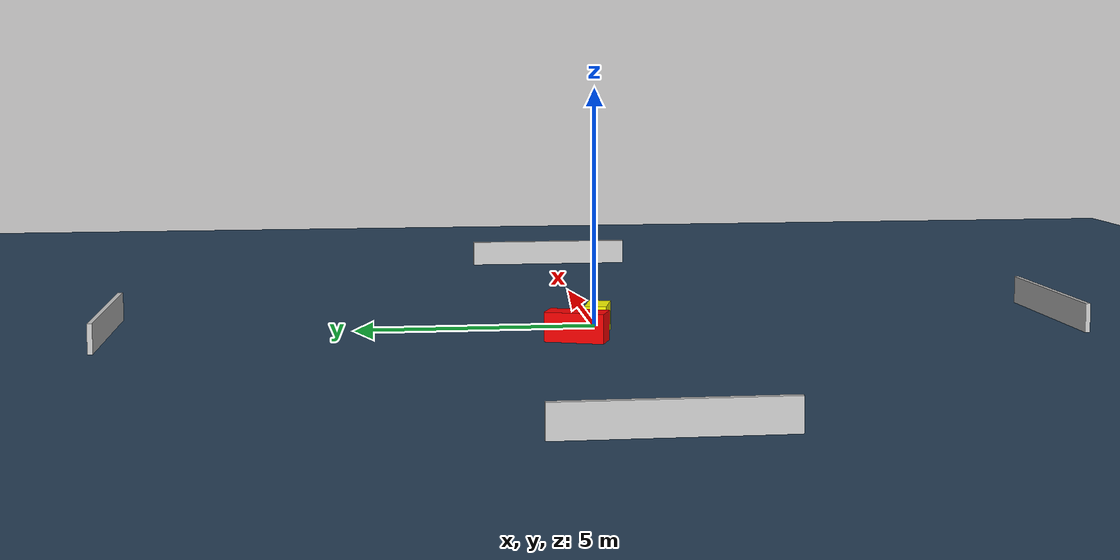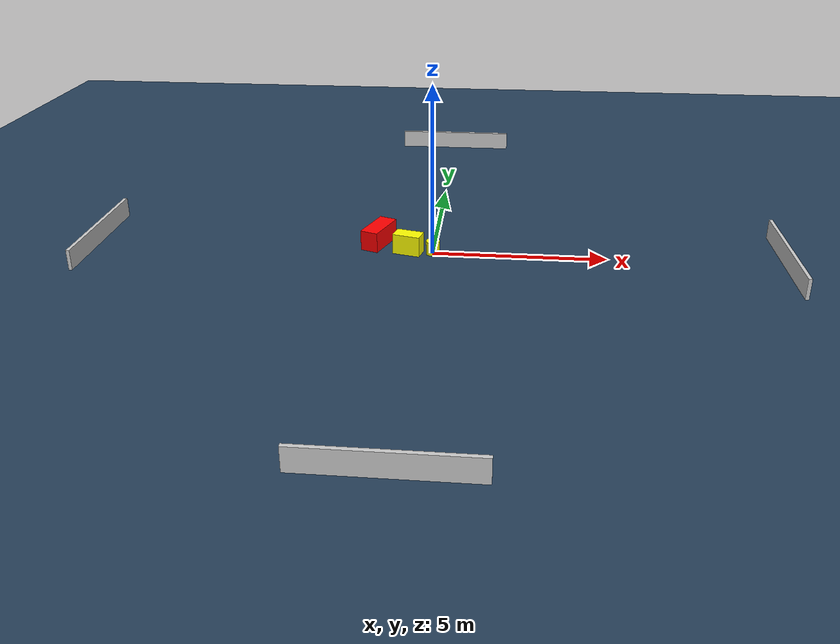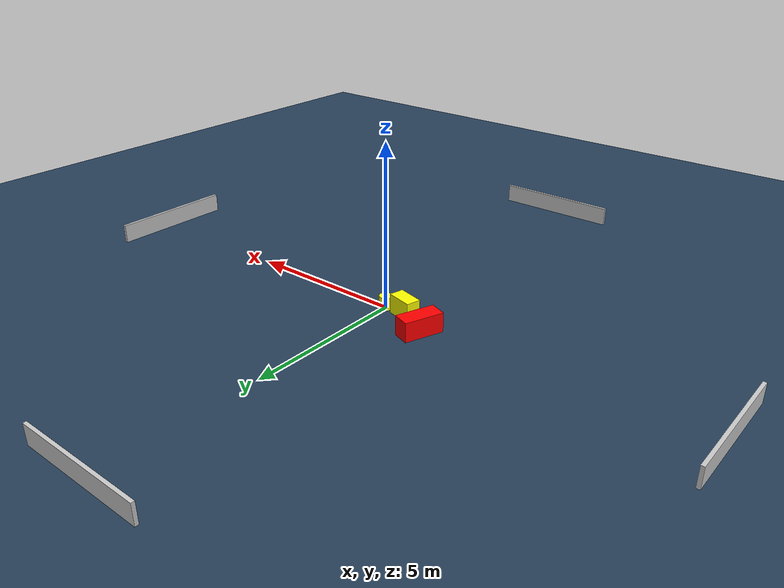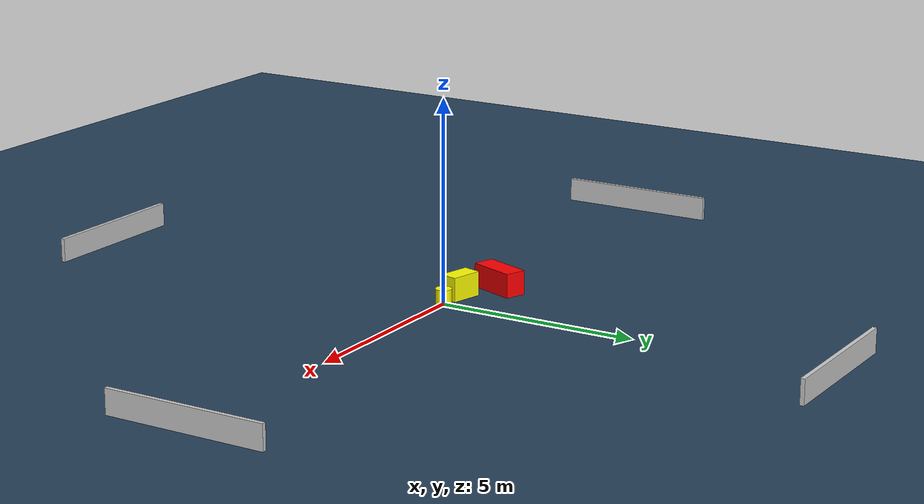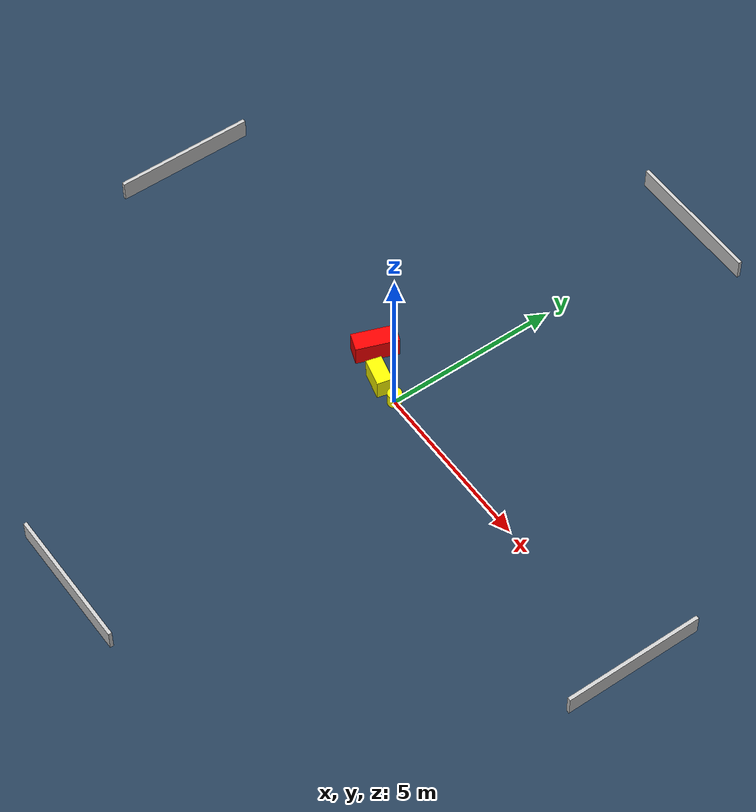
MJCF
<?xml version="1.0" ?>
<mujoco model="generated_environment">
  <option timestep="0.01" integrator="RK4" cone="elliptic"/>
  <default>
    <geom density="1"/>
  </default>
  <asset>
    <texture builtin="gradient" height="3072" name="skybox" rgb1="0.3 0.5 0.7" rgb2="0 0 0" type="skybox" width="512"/>
    <texture builtin="checker" height="300" name="groundplane" rgb1="0.2 0.3 0.4" rgb2="0.1 0.2 0.3" type="2d" width="300"/>
    <material name="groundplane" reflectance="0.2" texrepeat="5 5" texture="groundplane"/>
  </asset>
  <worldbody>
    <light dir="0 0 -1" directional="true" pos="0 0 1.5"/>
    <geom condim="3" friction="0.5 0.005 0.001" material="groundplane" name="floor" pos="0 0 0" size="0 0 0.05" type="plane"/>
    <body name="walls">
      <geom name="wall_1" condim="4" pos="-10.0 0.0 0.3" rgba="0.800000011920929 0.800000011920929 0.800000011920929 1.0" size="0.05 2.0 0.3" type="box"/>
      <geom name="wall_2" condim="4" pos="10.0 0.0 0.3" rgba="0.800000011920929 0.800000011920929 0.800000011920929 1.0" size="0.05 2.0 0.3" type="box"/>
      <geom name="wall_3" condim="4" pos="0.0 -10.0 0.3" rgba="0.800000011920929 0.800000011920929 0.800000011920929 1.0" size="2.0 0.05 0.3" type="box"/>
      <geom name="wall_4" condim="4" pos="0.0 10.0 0.3" rgba="0.800000011920929 0.800000011920929 0.800000011920929 1.0" size="2.0 0.05 0.3" type="box"/>
    </body>
    <body name="robot">
      <joint name="joint_x" type="slide" pos="0 0 0" axis="1 0 0"/>
      <joint name="joint_y" type="slide" pos="0 0 0" axis="0 1 0"/>
      <geom name="robot" type="cylinder" pos="0.0 0.0 0.2" size="0.2 0.2 0.0" mass="5.0" friction="1.0 0.005 0.0001" condim="4" rgba="1.0 1.0 0.0 1.0"/>
    </body>
    <body name="obstacle_1_movable">
      <geom name="obstacle_1_movable" condim="4" pos="-0.7187945462513635 0.02123960798944291 0.3" euler="0 0 166.04016020952392" friction="0.0 0.005 0.001" rgba="1.0 1.0 0.0 1.0" size="0.4052494066595036 0.2230411155683756 0.3" type="box" mass="0.1"/>
      <joint type="free"/>
    </body>
    <body name="obstacle_2_static">
      <geom name="obstacle_2_static" condim="4" pos="-1.6571308861728082 0.5609835681002078 0.3" euler="0 0 339.66327216778825" friction="0.0 0.005 0.001" rgba="1.0 0.0 0.0 1.0" size="0.267942425505355 0.6124074999568019 0.3" type="box"/>
    </body>
  </worldbody>
  <actuator>
    <motor name="actuator_x" joint="joint_x" gear="1" ctrlrange="-1 1"/>
    <motor name="actuator_y" joint="joint_y" gear="1" ctrlrange="-1 1"/>
  </actuator>
</mujoco>
